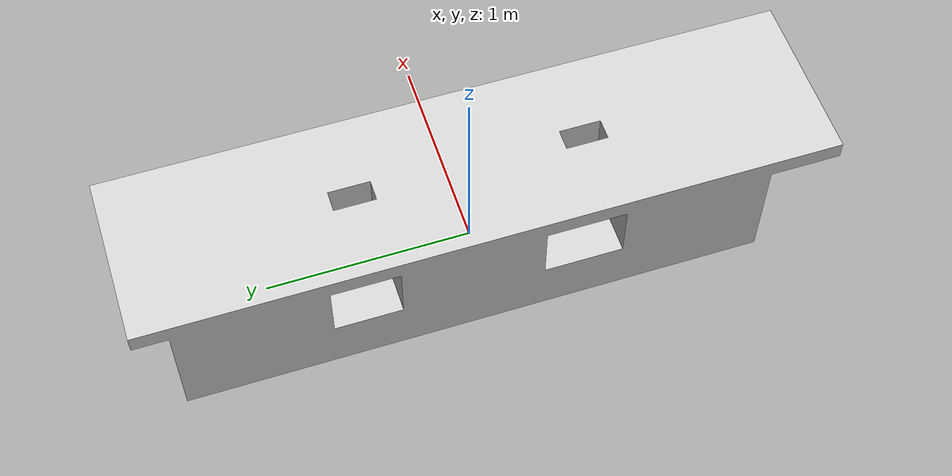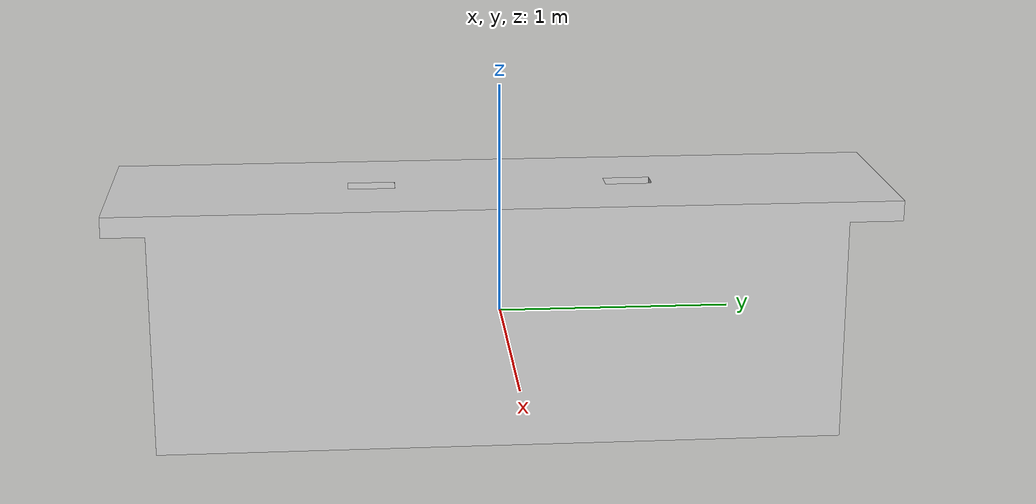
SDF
<?xml version='1.0'?>
<sdf version='1.5'>
    <model name="407_kitchen_table">
        <pose>0 0 0 0 0 0</pose>
        <static>true</static>
        <link name='model_body'>
            <visual name="visual">
                <geometry>
                    <mesh>
                        <uri>model://rs_gazebo/meshes/ss_hq4/407_kitchen_table/407_kitchen_table_visual.dae</uri>
                        <scale>1 1 1</scale>
                    </mesh>
                </geometry>
            </visual>

            <collision name="collision">
                <geometry>
                    <mesh>
                        <uri>model://rs_gazebo/meshes/ss_hq4/407_kitchen_table/407_kitchen_table_collision.stl</uri>
                        <scale>1 1 1</scale>
                    </mesh>
                </geometry>
            </collision>

            <inertial>
                <pose> 0 0 0 0 0 0</pose>
                <inertia>
                    <ixx>50.4166666667</ixx>
                    <ixy>0</ixy>
                    <ixz>0</ixz>
                    <iyy>7.70833333333</iyy>
                    <iyz>0</iyz>
                    <izz>48.0416666667</izz>
                </inertia>
                <mass>50.0</mass>
            </inertial>
        </link>
    </model>
</sdf>
